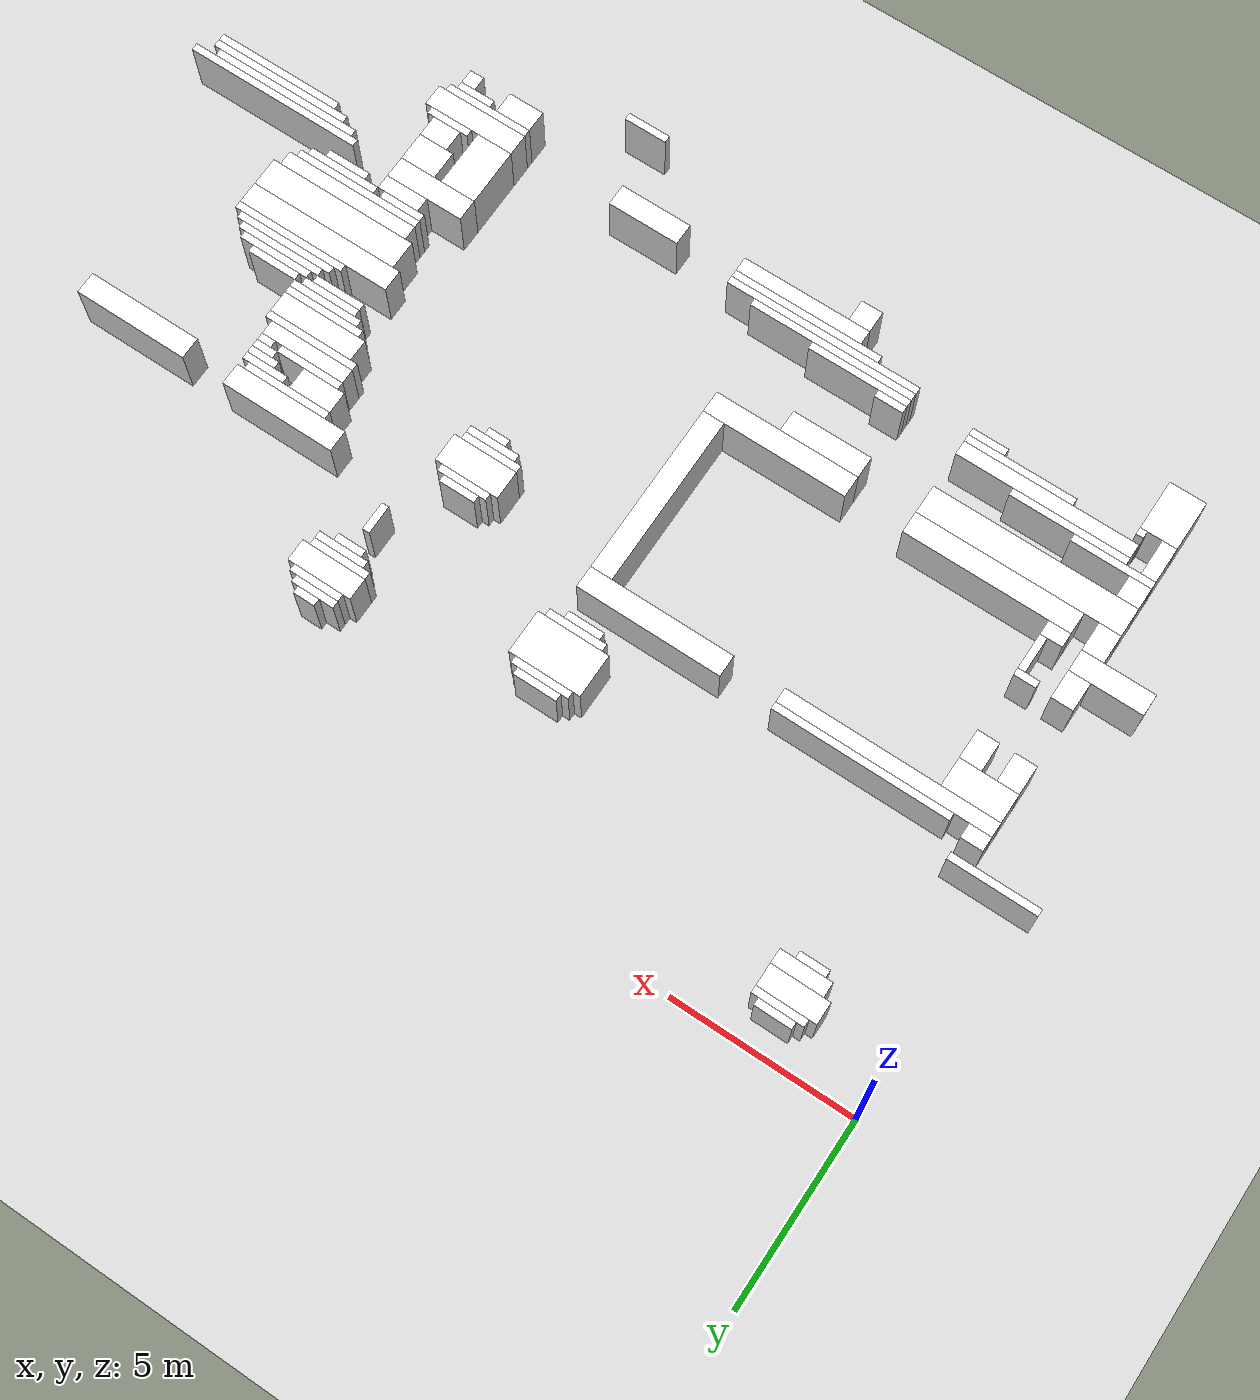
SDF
<sdf version="1.7">
 <world name="default">
  <model name="ground_plane">
   <static>1</static>
   <link name="link">
    <collision name="collision">
     <geometry><plane><normal>0 0 1</normal><size>120 120</size></plane></geometry>
    </collision>
    <visual name="visual">
     <geometry><plane><normal>0 0 1</normal><size>120 120</size></plane></geometry>
     <material>
      <script><uri>file://media/materials/scripts/gazebo.material</uri><name>Gazebo/Grey</name></script>
     </material>
    </visual>
   </link>
  </model>
  <model name="random_complex_01_model">
   <static>1</static>
   <link name="obs_1873">
    <pose>2.7000 -0.7000 0.8000 0 0 0</pose>
    <collision name="obs_1873_col"><geometry><box><size>1.0000 0.2000 1.6000</size></box></geometry></collision>
    <visual name="obs_1873_vis">
     <geometry><box><size>1.0000 0.2000 1.6000</size></box></geometry>
     <material>
      <script><uri>file://media/materials/scripts/gazebo.material</uri><name>Gazebo/White</name></script>
     </material>
    </visual>
   </link>
   <link name="obs_1878">
    <pose>2.7000 -0.9000 0.8000 0 0 0</pose>
    <collision name="obs_1878_col"><geometry><box><size>1.4000 0.2000 1.6000</size></box></geometry></collision>
    <visual name="obs_1878_vis">
     <geometry><box><size>1.4000 0.2000 1.6000</size></box></geometry>
     <material>
      <script><uri>file://media/materials/scripts/gazebo.material</uri><name>Gazebo/White</name></script>
     </material>
    </visual>
   </link>
   <link name="obs_1895">
    <pose>2.6000 -1.3000 0.8000 0 0 0</pose>
    <collision name="obs_1895_col"><geometry><box><size>1.6000 0.6000 1.6000</size></box></geometry></collision>
    <visual name="obs_1895_vis">
     <geometry><box><size>1.6000 0.6000 1.6000</size></box></geometry>
     <material>
      <script><uri>file://media/materials/scripts/gazebo.material</uri><name>Gazebo/White</name></script>
     </material>
    </visual>
   </link>
   <link name="obs_1907">
    <pose>2.7000 -1.8000 0.8000 0 0 0</pose>
    <collision name="obs_1907_col"><geometry><box><size>1.4000 0.4000 1.6000</size></box></geometry></collision>
    <visual name="obs_1907_vis">
     <geometry><box><size>1.4000 0.4000 1.6000</size></box></geometry>
     <material>
      <script><uri>file://media/materials/scripts/gazebo.material</uri><name>Gazebo/White</name></script>
     </material>
    </visual>
   </link>
   <link name="obs_1918">
    <pose>2.6000 -2.1000 0.8000 0 0 0</pose>
    <collision name="obs_1918_col"><geometry><box><size>0.8000 0.2000 1.6000</size></box></geometry></collision>
    <visual name="obs_1918_vis">
     <geometry><box><size>0.8000 0.2000 1.6000</size></box></geometry>
     <material>
      <script><uri>file://media/materials/scripts/gazebo.material</uri><name>Gazebo/White</name></script>
     </material>
    </visual>
   </link>
   <link name="obs_1951">
    <pose>17.1000 -2.9000 0.8000 0 0 0</pose>
    <collision name="obs_1951_col"><geometry><box><size>0.6000 0.2000 1.6000</size></box></geometry></collision>
    <visual name="obs_1951_vis">
     <geometry><box><size>0.6000 0.2000 1.6000</size></box></geometry>
     <material>
      <script><uri>file://media/materials/scripts/gazebo.material</uri><name>Gazebo/White</name></script>
     </material>
    </visual>
   </link>
   <link name="obs_1959">
    <pose>17.0000 -3.1000 0.8000 0 0 0</pose>
    <collision name="obs_1959_col"><geometry><box><size>1.2000 0.2000 1.6000</size></box></geometry></collision>
    <visual name="obs_1959_vis">
     <geometry><box><size>1.2000 0.2000 1.6000</size></box></geometry>
     <material>
      <script><uri>file://media/materials/scripts/gazebo.material</uri><name>Gazebo/White</name></script>
     </material>
    </visual>
   </link>
   <link name="obs_1964">
    <pose>17.1000 -3.3000 0.8000 0 0 0</pose>
    <collision name="obs_1964_col"><geometry><box><size>1.4000 0.2000 1.6000</size></box></geometry></collision>
    <visual name="obs_1964_vis">
     <geometry><box><size>1.4000 0.2000 1.6000</size></box></geometry>
     <material>
      <script><uri>file://media/materials/scripts/gazebo.material</uri><name>Gazebo/White</name></script>
     </material>
    </visual>
   </link>
   <link name="obs_1985">
    <pose>17.1000 -3.7000 0.8000 0 0 0</pose>
    <collision name="obs_1985_col"><geometry><box><size>1.8000 0.6000 1.6000</size></box></geometry></collision>
    <visual name="obs_1985_vis">
     <geometry><box><size>1.8000 0.6000 1.6000</size></box></geometry>
     <material>
      <script><uri>file://media/materials/scripts/gazebo.material</uri><name>Gazebo/White</name></script>
     </material>
    </visual>
   </link>
   <link name="obs_2000">
    <pose>11.4000 -4.1000 0.8000 0 0 0</pose>
    <collision name="obs_2000_col"><geometry><box><size>1.2000 0.2000 1.6000</size></box></geometry></collision>
    <visual name="obs_2000_vis">
     <geometry><box><size>1.2000 0.2000 1.6000</size></box></geometry>
     <material>
      <script><uri>file://media/materials/scripts/gazebo.material</uri><name>Gazebo/White</name></script>
     </material>
    </visual>
   </link>
   <link name="obs_2001">
    <pose>17.0000 -4.1000 0.8000 0 0 0</pose>
    <collision name="obs_2001_col"><geometry><box><size>1.6000 0.2000 1.6000</size></box></geometry></collision>
    <visual name="obs_2001_vis">
     <geometry><box><size>1.6000 0.2000 1.6000</size></box></geometry>
     <material>
      <script><uri>file://media/materials/scripts/gazebo.material</uri><name>Gazebo/White</name></script>
     </material>
    </visual>
   </link>
   <link name="obs_2011">
    <pose>11.4000 -4.3000 0.8000 0 0 0</pose>
    <collision name="obs_2011_col"><geometry><box><size>1.6000 0.2000 1.6000</size></box></geometry></collision>
    <visual name="obs_2011_vis">
     <geometry><box><size>1.6000 0.2000 1.6000</size></box></geometry>
     <material>
      <script><uri>file://media/materials/scripts/gazebo.material</uri><name>Gazebo/White</name></script>
     </material>
    </visual>
   </link>
   <link name="obs_2012">
    <pose>17.1000 -4.3000 0.8000 0 0 0</pose>
    <collision name="obs_2012_col"><geometry><box><size>1.4000 0.2000 1.6000</size></box></geometry></collision>
    <visual name="obs_2012_vis">
     <geometry><box><size>1.4000 0.2000 1.6000</size></box></geometry>
     <material>
      <script><uri>file://media/materials/scripts/gazebo.material</uri><name>Gazebo/White</name></script>
     </material>
    </visual>
   </link>
   <link name="obs_2023">
    <pose>17.0000 -4.5000 0.8000 0 0 0</pose>
    <collision name="obs_2023_col"><geometry><box><size>0.8000 0.2000 1.6000</size></box></geometry></collision>
    <visual name="obs_2023_vis">
     <geometry><box><size>0.8000 0.2000 1.6000</size></box></geometry>
     <material>
      <script><uri>file://media/materials/scripts/gazebo.material</uri><name>Gazebo/White</name></script>
     </material>
    </visual>
   </link>
   <link name="obs_2055">
    <pose>11.4000 -5.0000 0.8000 0 0 0</pose>
    <collision name="obs_2055_col"><geometry><box><size>2.0000 1.2000 1.6000</size></box></geometry></collision>
    <visual name="obs_2055_vis">
     <geometry><box><size>2.0000 1.2000 1.6000</size></box></geometry>
     <material>
      <script><uri>file://media/materials/scripts/gazebo.material</uri><name>Gazebo/White</name></script>
     </material>
    </visual>
   </link>
   <link name="obs_2062">
    <pose>16.9000 -5.4000 0.8000 0 0 0</pose>
    <collision name="obs_2062_col"><geometry><box><size>0.2000 0.8000 1.6000</size></box></geometry></collision>
    <visual name="obs_2062_vis">
     <geometry><box><size>0.2000 0.8000 1.6000</size></box></geometry>
     <material>
      <script><uri>file://media/materials/scripts/gazebo.material</uri><name>Gazebo/White</name></script>
     </material>
    </visual>
   </link>
   <link name="obs_2067">
    <pose>11.4000 -5.7000 0.8000 0 0 0</pose>
    <collision name="obs_2067_col"><geometry><box><size>1.6000 0.2000 1.6000</size></box></geometry></collision>
    <visual name="obs_2067_vis">
     <geometry><box><size>1.6000 0.2000 1.6000</size></box></geometry>
     <material>
      <script><uri>file://media/materials/scripts/gazebo.material</uri><name>Gazebo/White</name></script>
     </material>
    </visual>
   </link>
   <link name="obs_2076">
    <pose>0.2000 -5.9000 0.8000 0 0 0</pose>
    <collision name="obs_2076_col"><geometry><box><size>2.4000 0.2000 1.6000</size></box></geometry></collision>
    <visual name="obs_2076_vis">
     <geometry><box><size>2.4000 0.2000 1.6000</size></box></geometry>
     <material>
      <script><uri>file://media/materials/scripts/gazebo.material</uri><name>Gazebo/White</name></script>
     </material>
    </visual>
   </link>
   <link name="obs_2077">
    <pose>11.3000 -5.9000 0.8000 0 0 0</pose>
    <collision name="obs_2077_col"><geometry><box><size>1.0000 0.2000 1.6000</size></box></geometry></collision>
    <visual name="obs_2077_vis">
     <geometry><box><size>1.0000 0.2000 1.6000</size></box></geometry>
     <material>
      <script><uri>file://media/materials/scripts/gazebo.material</uri><name>Gazebo/White</name></script>
     </material>
    </visual>
   </link>
   <link name="obs_2098">
    <pose>20.4000 -6.5000 0.8000 0 0 0</pose>
    <collision name="obs_2098_col"><geometry><box><size>3.2000 0.6000 1.6000</size></box></geometry></collision>
    <visual name="obs_2098_vis">
     <geometry><box><size>3.2000 0.6000 1.6000</size></box></geometry>
     <material>
      <script><uri>file://media/materials/scripts/gazebo.material</uri><name>Gazebo/White</name></script>
     </material>
    </visual>
   </link>
   <link name="obs_2099">
    <pose>24.8000 -6.5000 0.8000 0 0 0</pose>
    <collision name="obs_2099_col"><geometry><box><size>3.2000 0.6000 1.6000</size></box></geometry></collision>
    <visual name="obs_2099_vis">
     <geometry><box><size>3.2000 0.6000 1.6000</size></box></geometry>
     <material>
      <script><uri>file://media/materials/scripts/gazebo.material</uri><name>Gazebo/White</name></script>
     </material>
    </visual>
   </link>
   <link name="obs_2100">
    <pose>1.1000 -6.6000 0.8000 0 0 0</pose>
    <collision name="obs_2100_col"><geometry><box><size>0.6000 0.4000 1.6000</size></box></geometry></collision>
    <visual name="obs_2100_vis">
     <geometry><box><size>0.6000 0.4000 1.6000</size></box></geometry>
     <material>
      <script><uri>file://media/materials/scripts/gazebo.material</uri><name>Gazebo/White</name></script>
     </material>
    </visual>
   </link>
   <link name="obs_2106">
    <pose>4.2000 -6.7000 0.8000 0 0 0</pose>
    <collision name="obs_2106_col"><geometry><box><size>4.8000 0.2000 1.6000</size></box></geometry></collision>
    <visual name="obs_2106_vis">
     <geometry><box><size>4.8000 0.2000 1.6000</size></box></geometry>
     <material>
      <script><uri>file://media/materials/scripts/gazebo.material</uri><name>Gazebo/White</name></script>
     </material>
    </visual>
   </link>
   <link name="obs_2114">
    <pose>20.6000 -6.9000 0.8000 0 0 0</pose>
    <collision name="obs_2114_col"><geometry><box><size>2.4000 0.2000 1.6000</size></box></geometry></collision>
    <visual name="obs_2114_vis">
     <geometry><box><size>2.4000 0.2000 1.6000</size></box></geometry>
     <material>
      <script><uri>file://media/materials/scripts/gazebo.material</uri><name>Gazebo/White</name></script>
     </material>
    </visual>
   </link>
   <link name="obs_2117">
    <pose>10.0000 -6.9000 0.8000 0 0 0</pose>
    <collision name="obs_2117_col"><geometry><box><size>4.0000 0.6000 1.6000</size></box></geometry></collision>
    <visual name="obs_2117_vis">
     <geometry><box><size>4.0000 0.6000 1.6000</size></box></geometry>
     <material>
      <script><uri>file://media/materials/scripts/gazebo.material</uri><name>Gazebo/White</name></script>
     </material>
    </visual>
   </link>
   <link name="obs_2118">
    <pose>3.7000 -7.0000 0.8000 0 0 0</pose>
    <collision name="obs_2118_col"><geometry><box><size>5.8000 0.4000 1.6000</size></box></geometry></collision>
    <visual name="obs_2118_vis">
     <geometry><box><size>5.8000 0.4000 1.6000</size></box></geometry>
     <material>
      <script><uri>file://media/materials/scripts/gazebo.material</uri><name>Gazebo/White</name></script>
     </material>
    </visual>
   </link>
   <link name="obs_2123">
    <pose>15.7000 -7.1000 0.8000 0 0 0</pose>
    <collision name="obs_2123_col"><geometry><box><size>1.0000 0.2000 1.6000</size></box></geometry></collision>
    <visual name="obs_2123_vis">
     <geometry><box><size>1.0000 0.2000 1.6000</size></box></geometry>
     <material>
      <script><uri>file://media/materials/scripts/gazebo.material</uri><name>Gazebo/White</name></script>
     </material>
    </visual>
   </link>
   <link name="obs_2124">
    <pose>21.4000 -7.1000 0.8000 0 0 0</pose>
    <collision name="obs_2124_col"><geometry><box><size>1.2000 0.2000 1.6000</size></box></geometry></collision>
    <visual name="obs_2124_vis">
     <geometry><box><size>1.2000 0.2000 1.6000</size></box></geometry>
     <material>
      <script><uri>file://media/materials/scripts/gazebo.material</uri><name>Gazebo/White</name></script>
     </material>
    </visual>
   </link>
   <link name="obs_2132">
    <pose>15.7000 -7.3000 0.8000 0 0 0</pose>
    <collision name="obs_2132_col"><geometry><box><size>1.4000 0.2000 1.6000</size></box></geometry></collision>
    <visual name="obs_2132_vis">
     <geometry><box><size>1.4000 0.2000 1.6000</size></box></geometry>
     <material>
      <script><uri>file://media/materials/scripts/gazebo.material</uri><name>Gazebo/White</name></script>
     </material>
    </visual>
   </link>
   <link name="obs_2133">
    <pose>21.6000 -7.3000 0.8000 0 0 0</pose>
    <collision name="obs_2133_col"><geometry><box><size>0.8000 0.2000 1.6000</size></box></geometry></collision>
    <visual name="obs_2133_vis">
     <geometry><box><size>0.8000 0.2000 1.6000</size></box></geometry>
     <material>
      <script><uri>file://media/materials/scripts/gazebo.material</uri><name>Gazebo/White</name></script>
     </material>
    </visual>
   </link>
   <link name="obs_2137">
    <pose>20.0000 -7.3000 0.8000 0 0 0</pose>
    <collision name="obs_2137_col"><geometry><box><size>1.2000 0.6000 1.6000</size></box></geometry></collision>
    <visual name="obs_2137_vis">
     <geometry><box><size>1.2000 0.6000 1.6000</size></box></geometry>
     <material>
      <script><uri>file://media/materials/scripts/gazebo.material</uri><name>Gazebo/White</name></script>
     </material>
    </visual>
   </link>
   <link name="obs_2140">
    <pose>21.7000 -7.5000 0.8000 0 0 0</pose>
    <collision name="obs_2140_col"><geometry><box><size>0.6000 0.2000 1.6000</size></box></geometry></collision>
    <visual name="obs_2140_vis">
     <geometry><box><size>0.6000 0.2000 1.6000</size></box></geometry>
     <material>
      <script><uri>file://media/materials/scripts/gazebo.material</uri><name>Gazebo/White</name></script>
     </material>
    </visual>
   </link>
   <link name="obs_2148">
    <pose>20.5000 -7.7000 0.8000 0 0 0</pose>
    <collision name="obs_2148_col"><geometry><box><size>1.8000 0.2000 1.6000</size></box></geometry></collision>
    <visual name="obs_2148_vis">
     <geometry><box><size>1.8000 0.2000 1.6000</size></box></geometry>
     <material>
      <script><uri>file://media/materials/scripts/gazebo.material</uri><name>Gazebo/White</name></script>
     </material>
    </visual>
   </link>
   <link name="obs_2149">
    <pose>21.8000 -7.7000 0.8000 0 0 0</pose>
    <collision name="obs_2149_col"><geometry><box><size>0.4000 0.2000 1.6000</size></box></geometry></collision>
    <visual name="obs_2149_vis">
     <geometry><box><size>0.4000 0.2000 1.6000</size></box></geometry>
     <material>
      <script><uri>file://media/materials/scripts/gazebo.material</uri><name>Gazebo/White</name></script>
     </material>
    </visual>
   </link>
   <link name="obs_2151">
    <pose>1.6000 -7.6000 0.8000 0 0 0</pose>
    <collision name="obs_2151_col"><geometry><box><size>1.6000 0.8000 1.6000</size></box></geometry></collision>
    <visual name="obs_2151_vis">
     <geometry><box><size>1.6000 0.8000 1.6000</size></box></geometry>
     <material>
      <script><uri>file://media/materials/scripts/gazebo.material</uri><name>Gazebo/White</name></script>
     </material>
    </visual>
   </link>
   <link name="obs_2157">
    <pose>15.7000 -7.8000 0.8000 0 0 0</pose>
    <collision name="obs_2157_col"><geometry><box><size>1.8000 0.8000 1.6000</size></box></geometry></collision>
    <visual name="obs_2157_vis">
     <geometry><box><size>1.8000 0.8000 1.6000</size></box></geometry>
     <material>
      <script><uri>file://media/materials/scripts/gazebo.material</uri><name>Gazebo/White</name></script>
     </material>
    </visual>
   </link>
   <link name="obs_2158">
    <pose>20.8000 -8.0000 0.8000 0 0 0</pose>
    <collision name="obs_2158_col"><geometry><box><size>2.4000 0.4000 1.6000</size></box></geometry></collision>
    <visual name="obs_2158_vis">
     <geometry><box><size>2.4000 0.4000 1.6000</size></box></geometry>
     <material>
      <script><uri>file://media/materials/scripts/gazebo.material</uri><name>Gazebo/White</name></script>
     </material>
    </visual>
   </link>
   <link name="obs_2165">
    <pose>15.6000 -8.3000 0.8000 0 0 0</pose>
    <collision name="obs_2165_col"><geometry><box><size>1.6000 0.2000 1.6000</size></box></geometry></collision>
    <visual name="obs_2165_vis">
     <geometry><box><size>1.6000 0.2000 1.6000</size></box></geometry>
     <material>
      <script><uri>file://media/materials/scripts/gazebo.material</uri><name>Gazebo/White</name></script>
     </material>
    </visual>
   </link>
   <link name="obs_2166">
    <pose>20.9000 -8.3000 0.8000 0 0 0</pose>
    <collision name="obs_2166_col"><geometry><box><size>2.6000 0.2000 1.6000</size></box></geometry></collision>
    <visual name="obs_2166_vis">
     <geometry><box><size>2.6000 0.2000 1.6000</size></box></geometry>
     <material>
      <script><uri>file://media/materials/scripts/gazebo.material</uri><name>Gazebo/White</name></script>
     </material>
    </visual>
   </link>
   <link name="obs_2173">
    <pose>15.7000 -8.5000 0.8000 0 0 0</pose>
    <collision name="obs_2173_col"><geometry><box><size>1.4000 0.2000 1.6000</size></box></geometry></collision>
    <visual name="obs_2173_vis">
     <geometry><box><size>1.4000 0.2000 1.6000</size></box></geometry>
     <material>
      <script><uri>file://media/materials/scripts/gazebo.material</uri><name>Gazebo/White</name></script>
     </material>
    </visual>
   </link>
   <link name="obs_2175">
    <pose>1.1000 -8.4000 0.8000 0 0 0</pose>
    <collision name="obs_2175_col"><geometry><box><size>0.6000 0.8000 1.6000</size></box></geometry></collision>
    <visual name="obs_2175_vis">
     <geometry><box><size>0.6000 0.8000 1.6000</size></box></geometry>
     <material>
      <script><uri>file://media/materials/scripts/gazebo.material</uri><name>Gazebo/White</name></script>
     </material>
    </visual>
   </link>
   <link name="obs_2176">
    <pose>2.1000 -8.4000 0.8000 0 0 0</pose>
    <collision name="obs_2176_col"><geometry><box><size>0.6000 0.8000 1.6000</size></box></geometry></collision>
    <visual name="obs_2176_vis">
     <geometry><box><size>0.6000 0.8000 1.6000</size></box></geometry>
     <material>
      <script><uri>file://media/materials/scripts/gazebo.material</uri><name>Gazebo/White</name></script>
     </material>
    </visual>
   </link>
   <link name="obs_2181">
    <pose>15.7000 -8.7000 0.8000 0 0 0</pose>
    <collision name="obs_2181_col"><geometry><box><size>0.6000 0.2000 1.6000</size></box></geometry></collision>
    <visual name="obs_2181_vis">
     <geometry><box><size>0.6000 0.2000 1.6000</size></box></geometry>
     <material>
      <script><uri>file://media/materials/scripts/gazebo.material</uri><name>Gazebo/White</name></script>
     </material>
    </visual>
   </link>
   <link name="obs_2186">
    <pose>21.0000 -8.7000 0.8000 0 0 0</pose>
    <collision name="obs_2186_col"><geometry><box><size>2.4000 0.6000 1.6000</size></box></geometry></collision>
    <visual name="obs_2186_vis">
     <geometry><box><size>2.4000 0.6000 1.6000</size></box></geometry>
     <material>
      <script><uri>file://media/materials/scripts/gazebo.material</uri><name>Gazebo/White</name></script>
     </material>
    </visual>
   </link>
   <link name="obs_2192">
    <pose>21.1000 -9.1000 0.8000 0 0 0</pose>
    <collision name="obs_2192_col"><geometry><box><size>2.2000 0.2000 1.6000</size></box></geometry></collision>
    <visual name="obs_2192_vis">
     <geometry><box><size>2.2000 0.2000 1.6000</size></box></geometry>
     <material>
      <script><uri>file://media/materials/scripts/gazebo.material</uri><name>Gazebo/White</name></script>
     </material>
    </visual>
   </link>
   <link name="obs_2198">
    <pose>21.2000 -9.3000 0.8000 0 0 0</pose>
    <collision name="obs_2198_col"><geometry><box><size>2.0000 0.2000 1.6000</size></box></geometry></collision>
    <visual name="obs_2198_vis">
     <geometry><box><size>2.0000 0.2000 1.6000</size></box></geometry>
     <material>
      <script><uri>file://media/materials/scripts/gazebo.material</uri><name>Gazebo/White</name></script>
     </material>
    </visual>
   </link>
   <link name="obs_2204">
    <pose>21.2000 -9.5000 0.8000 0 0 0</pose>
    <collision name="obs_2204_col"><geometry><box><size>1.6000 0.2000 1.6000</size></box></geometry></collision>
    <visual name="obs_2204_vis">
     <geometry><box><size>1.6000 0.2000 1.6000</size></box></geometry>
     <material>
      <script><uri>file://media/materials/scripts/gazebo.material</uri><name>Gazebo/White</name></script>
     </material>
    </visual>
   </link>
   <link name="obs_2205">
    <pose>22.9000 -9.5000 0.8000 0 0 0</pose>
    <collision name="obs_2205_col"><geometry><box><size>1.4000 0.2000 1.6000</size></box></geometry></collision>
    <visual name="obs_2205_vis">
     <geometry><box><size>1.4000 0.2000 1.6000</size></box></geometry>
     <material>
      <script><uri>file://media/materials/scripts/gazebo.material</uri><name>Gazebo/White</name></script>
     </material>
    </visual>
   </link>
   <link name="obs_2210">
    <pose>21.1000 -9.7000 0.8000 0 0 0</pose>
    <collision name="obs_2210_col"><geometry><box><size>1.4000 0.2000 1.6000</size></box></geometry></collision>
    <visual name="obs_2210_vis">
     <geometry><box><size>1.4000 0.2000 1.6000</size></box></geometry>
     <material>
      <script><uri>file://media/materials/scripts/gazebo.material</uri><name>Gazebo/White</name></script>
     </material>
    </visual>
   </link>
   <link name="obs_2211">
    <pose>23.0000 -9.7000 0.8000 0 0 0</pose>
    <collision name="obs_2211_col"><geometry><box><size>2.0000 0.2000 1.6000</size></box></geometry></collision>
    <visual name="obs_2211_vis">
     <geometry><box><size>2.0000 0.2000 1.6000</size></box></geometry>
     <material>
      <script><uri>file://media/materials/scripts/gazebo.material</uri><name>Gazebo/White</name></script>
     </material>
    </visual>
   </link>
   <link name="obs_2217">
    <pose>23.0000 -9.9000 0.8000 0 0 0</pose>
    <collision name="obs_2217_col"><geometry><box><size>2.4000 0.2000 1.6000</size></box></geometry></collision>
    <visual name="obs_2217_vis">
     <geometry><box><size>2.4000 0.2000 1.6000</size></box></geometry>
     <material>
      <script><uri>file://media/materials/scripts/gazebo.material</uri><name>Gazebo/White</name></script>
     </material>
    </visual>
   </link>
   <link name="obs_2223">
    <pose>23.0000 -10.1000 0.8000 0 0 0</pose>
    <collision name="obs_2223_col"><geometry><box><size>2.8000 0.2000 1.6000</size></box></geometry></collision>
    <visual name="obs_2223_vis">
     <geometry><box><size>2.8000 0.2000 1.6000</size></box></geometry>
     <material>
      <script><uri>file://media/materials/scripts/gazebo.material</uri><name>Gazebo/White</name></script>
     </material>
    </visual>
   </link>
   <link name="obs_2228">
    <pose>23.0000 -10.3000 0.8000 0 0 0</pose>
    <collision name="obs_2228_col"><geometry><box><size>3.2000 0.2000 1.6000</size></box></geometry></collision>
    <visual name="obs_2228_vis">
     <geometry><box><size>3.2000 0.2000 1.6000</size></box></geometry>
     <material>
      <script><uri>file://media/materials/scripts/gazebo.material</uri><name>Gazebo/White</name></script>
     </material>
    </visual>
   </link>
   <link name="obs_2235">
    <pose>2.1000 -10.5000 0.8000 0 0 0</pose>
    <collision name="obs_2235_col"><geometry><box><size>0.6000 0.2000 1.6000</size></box></geometry></collision>
    <visual name="obs_2235_vis">
     <geometry><box><size>0.6000 0.2000 1.6000</size></box></geometry>
     <material>
      <script><uri>file://media/materials/scripts/gazebo.material</uri><name>Gazebo/White</name></script>
     </material>
    </visual>
   </link>
   <link name="obs_2246">
    <pose>22.4000 -10.7000 0.8000 0 0 0</pose>
    <collision name="obs_2246_col"><geometry><box><size>4.4000 0.6000 1.6000</size></box></geometry></collision>
    <visual name="obs_2246_vis">
     <geometry><box><size>4.4000 0.6000 1.6000</size></box></geometry>
     <material>
      <script><uri>file://media/materials/scripts/gazebo.material</uri><name>Gazebo/White</name></script>
     </material>
    </visual>
   </link>
   <link name="obs_2255">
    <pose>1.1000 -10.8000 0.8000 0 0 0</pose>
    <collision name="obs_2255_col"><geometry><box><size>0.6000 0.8000 1.6000</size></box></geometry></collision>
    <visual name="obs_2255_vis">
     <geometry><box><size>0.6000 0.8000 1.6000</size></box></geometry>
     <material>
      <script><uri>file://media/materials/scripts/gazebo.material</uri><name>Gazebo/White</name></script>
     </material>
    </visual>
   </link>
   <link name="obs_2266">
    <pose>2.3000 -11.1000 0.8000 0 0 0</pose>
    <collision name="obs_2266_col"><geometry><box><size>0.2000 1.0000 1.6000</size></box></geometry></collision>
    <visual name="obs_2266_vis">
     <geometry><box><size>0.2000 1.0000 1.6000</size></box></geometry>
     <material>
      <script><uri>file://media/materials/scripts/gazebo.material</uri><name>Gazebo/White</name></script>
     </material>
    </visual>
   </link>
   <link name="obs_2271">
    <pose>22.5000 -11.4000 0.8000 0 0 0</pose>
    <collision name="obs_2271_col"><geometry><box><size>4.2000 0.8000 1.6000</size></box></geometry></collision>
    <visual name="obs_2271_vis">
     <geometry><box><size>4.2000 0.8000 1.6000</size></box></geometry>
     <material>
      <script><uri>file://media/materials/scripts/gazebo.material</uri><name>Gazebo/White</name></script>
     </material>
    </visual>
   </link>
   <link name="obs_2275">
    <pose>0.4000 -11.5000 0.8000 0 0 0</pose>
    <collision name="obs_2275_col"><geometry><box><size>2.0000 0.6000 1.6000</size></box></geometry></collision>
    <visual name="obs_2275_vis">
     <geometry><box><size>2.0000 0.6000 1.6000</size></box></geometry>
     <material>
      <script><uri>file://media/materials/scripts/gazebo.material</uri><name>Gazebo/White</name></script>
     </material>
    </visual>
   </link>
   <link name="obs_2279">
    <pose>11.7000 -9.6000 0.8000 0 0 0</pose>
    <collision name="obs_2279_col"><geometry><box><size>0.6000 4.8000 1.6000</size></box></geometry></collision>
    <visual name="obs_2279_vis">
     <geometry><box><size>0.6000 4.8000 1.6000</size></box></geometry>
     <material>
      <script><uri>file://media/materials/scripts/gazebo.material</uri><name>Gazebo/White</name></script>
     </material>
    </visual>
   </link>
   <link name="obs_2281">
    <pose>2.1000 -11.8000 0.8000 0 0 0</pose>
    <collision name="obs_2281_col"><geometry><box><size>0.6000 0.4000 1.6000</size></box></geometry></collision>
    <visual name="obs_2281_vis">
     <geometry><box><size>0.6000 0.4000 1.6000</size></box></geometry>
     <material>
      <script><uri>file://media/materials/scripts/gazebo.material</uri><name>Gazebo/White</name></script>
     </material>
    </visual>
   </link>
   <link name="obs_2286">
    <pose>22.5000 -12.0000 0.8000 0 0 0</pose>
    <collision name="obs_2286_col"><geometry><box><size>3.8000 0.4000 1.6000</size></box></geometry></collision>
    <visual name="obs_2286_vis">
     <geometry><box><size>3.8000 0.4000 1.6000</size></box></geometry>
     <material>
      <script><uri>file://media/materials/scripts/gazebo.material</uri><name>Gazebo/White</name></script>
     </material>
    </visual>
   </link>
   <link name="obs_2292">
    <pose>22.4000 -12.3000 0.8000 0 0 0</pose>
    <collision name="obs_2292_col"><geometry><box><size>3.6000 0.2000 1.6000</size></box></geometry></collision>
    <visual name="obs_2292_vis">
     <geometry><box><size>3.6000 0.2000 1.6000</size></box></geometry>
     <material>
      <script><uri>file://media/materials/scripts/gazebo.material</uri><name>Gazebo/White</name></script>
     </material>
    </visual>
   </link>
   <link name="obs_2296">
    <pose>1.1000 -12.2000 0.8000 0 0 0</pose>
    <collision name="obs_2296_col"><geometry><box><size>0.6000 0.8000 1.6000</size></box></geometry></collision>
    <visual name="obs_2296_vis">
     <geometry><box><size>0.6000 0.8000 1.6000</size></box></geometry>
     <material>
      <script><uri>file://media/materials/scripts/gazebo.material</uri><name>Gazebo/White</name></script>
     </material>
    </visual>
   </link>
   <link name="obs_2298">
    <pose>4.1000 -12.3000 0.8000 0 0 0</pose>
    <collision name="obs_2298_col"><geometry><box><size>4.6000 0.6000 1.6000</size></box></geometry></collision>
    <visual name="obs_2298_vis">
     <geometry><box><size>4.6000 0.6000 1.6000</size></box></geometry>
     <material>
      <script><uri>file://media/materials/scripts/gazebo.material</uri><name>Gazebo/White</name></script>
     </material>
    </visual>
   </link>
   <link name="obs_2299">
    <pose>10.0000 -12.3000 0.8000 0 0 0</pose>
    <collision name="obs_2299_col"><geometry><box><size>4.0000 0.6000 1.6000</size></box></geometry></collision>
    <visual name="obs_2299_vis">
     <geometry><box><size>4.0000 0.6000 1.6000</size></box></geometry>
     <material>
      <script><uri>file://media/materials/scripts/gazebo.material</uri><name>Gazebo/White</name></script>
     </material>
    </visual>
   </link>
   <link name="obs_2302">
    <pose>21.2000 -12.5000 0.8000 0 0 0</pose>
    <collision name="obs_2302_col"><geometry><box><size>1.2000 0.2000 1.6000</size></box></geometry></collision>
    <visual name="obs_2302_vis">
     <geometry><box><size>1.2000 0.2000 1.6000</size></box></geometry>
     <material>
      <script><uri>file://media/materials/scripts/gazebo.material</uri><name>Gazebo/White</name></script>
     </material>
    </visual>
   </link>
   <link name="obs_2303">
    <pose>23.0000 -12.5000 0.8000 0 0 0</pose>
    <collision name="obs_2303_col"><geometry><box><size>2.0000 0.2000 1.6000</size></box></geometry></collision>
    <visual name="obs_2303_vis">
     <geometry><box><size>2.0000 0.2000 1.6000</size></box></geometry>
     <material>
      <script><uri>file://media/materials/scripts/gazebo.material</uri><name>Gazebo/White</name></script>
     </material>
    </visual>
   </link>
   <link name="obs_2310">
    <pose>23.0000 -12.7000 0.8000 0 0 0</pose>
    <collision name="obs_2310_col"><geometry><box><size>1.2000 0.2000 1.6000</size></box></geometry></collision>
    <visual name="obs_2310_vis">
     <geometry><box><size>1.2000 0.2000 1.6000</size></box></geometry>
     <material>
      <script><uri>file://media/materials/scripts/gazebo.material</uri><name>Gazebo/White</name></script>
     </material>
    </visual>
   </link>
   <link name="obs_2314">
    <pose>21.4000 -12.8000 0.8000 0 0 0</pose>
    <collision name="obs_2314_col"><geometry><box><size>1.2000 0.4000 1.6000</size></box></geometry></collision>
    <visual name="obs_2314_vis">
     <geometry><box><size>1.2000 0.4000 1.6000</size></box></geometry>
     <material>
      <script><uri>file://media/materials/scripts/gazebo.material</uri><name>Gazebo/White</name></script>
     </material>
    </visual>
   </link>
   <link name="obs_2317">
    <pose>9.1000 -12.9000 0.8000 0 0 0</pose>
    <collision name="obs_2317_col"><geometry><box><size>2.2000 0.6000 1.6000</size></box></geometry></collision>
    <visual name="obs_2317_vis">
     <geometry><box><size>2.2000 0.6000 1.6000</size></box></geometry>
     <material>
      <script><uri>file://media/materials/scripts/gazebo.material</uri><name>Gazebo/White</name></script>
     </material>
    </visual>
   </link>
   <link name="obs_2325">
    <pose>3.6000 -13.0000 0.8000 0 0 0</pose>
    <collision name="obs_2325_col"><geometry><box><size>5.6000 0.8000 1.6000</size></box></geometry></collision>
    <visual name="obs_2325_vis">
     <geometry><box><size>5.6000 0.8000 1.6000</size></box></geometry>
     <material>
      <script><uri>file://media/materials/scripts/gazebo.material</uri><name>Gazebo/White</name></script>
     </material>
    </visual>
   </link>
   <link name="obs_2326">
    <pose>25.7000 -13.3000 0.8000 0 0 0</pose>
    <collision name="obs_2326_col"><geometry><box><size>5.0000 0.2000 1.6000</size></box></geometry></collision>
    <visual name="obs_2326_vis">
     <geometry><box><size>5.0000 0.2000 1.6000</size></box></geometry>
     <material>
      <script><uri>file://media/materials/scripts/gazebo.material</uri><name>Gazebo/White</name></script>
     </material>
    </visual>
   </link>
   <link name="obs_2332">
    <pose>20.9000 -13.3000 0.8000 0 0 0</pose>
    <collision name="obs_2332_col"><geometry><box><size>2.2000 0.6000 1.6000</size></box></geometry></collision>
    <visual name="obs_2332_vis">
     <geometry><box><size>2.2000 0.6000 1.6000</size></box></geometry>
     <material>
      <script><uri>file://media/materials/scripts/gazebo.material</uri><name>Gazebo/White</name></script>
     </material>
    </visual>
   </link>
   <link name="obs_2334">
    <pose>25.5000 -13.5000 0.8000 0 0 0</pose>
    <collision name="obs_2334_col"><geometry><box><size>4.2000 0.2000 1.6000</size></box></geometry></collision>
    <visual name="obs_2334_vis">
     <geometry><box><size>4.2000 0.2000 1.6000</size></box></geometry>
     <material>
      <script><uri>file://media/materials/scripts/gazebo.material</uri><name>Gazebo/White</name></script>
     </material>
    </visual>
   </link>
   <link name="obs_2342">
    <pose>25.8000 -13.7000 0.8000 0 0 0</pose>
    <collision name="obs_2342_col"><geometry><box><size>4.0000 0.2000 1.6000</size></box></geometry></collision>
    <visual name="obs_2342_vis">
     <geometry><box><size>4.0000 0.2000 1.6000</size></box></geometry>
     <material>
      <script><uri>file://media/materials/scripts/gazebo.material</uri><name>Gazebo/White</name></script>
     </material>
    </visual>
   </link>
   <link name="obs_2346">
    <pose>1.1000 -13.7000 0.8000 0 0 0</pose>
    <collision name="obs_2346_col"><geometry><box><size>0.6000 0.6000 1.6000</size></box></geometry></collision>
    <visual name="obs_2346_vis">
     <geometry><box><size>0.6000 0.6000 1.6000</size></box></geometry>
     <material>
      <script><uri>file://media/materials/scripts/gazebo.material</uri><name>Gazebo/White</name></script>
     </material>
    </visual>
   </link>
   <link name="obs_2349">
    <pose>26.0000 -13.9000 0.8000 0 0 0</pose>
    <collision name="obs_2349_col"><geometry><box><size>3.6000 0.2000 1.6000</size></box></geometry></collision>
    <visual name="obs_2349_vis">
     <geometry><box><size>3.6000 0.2000 1.6000</size></box></geometry>
     <material>
      <script><uri>file://media/materials/scripts/gazebo.material</uri><name>Gazebo/White</name></script>
     </material>
    </visual>
   </link>
   <link name="obs_2354">
    <pose>1.9000 -14.1000 0.8000 0 0 0</pose>
    <collision name="obs_2354_col"><geometry><box><size>2.2000 0.2000 1.6000</size></box></geometry></collision>
    <visual name="obs_2354_vis">
     <geometry><box><size>2.2000 0.2000 1.6000</size></box></geometry>
     <material>
      <script><uri>file://media/materials/scripts/gazebo.material</uri><name>Gazebo/White</name></script>
     </material>
    </visual>
   </link>
   <link name="obs_2359">
    <pose>21.5000 -14.0000 0.8000 0 0 0</pose>
    <collision name="obs_2359_col"><geometry><box><size>1.0000 0.8000 1.6000</size></box></geometry></collision>
    <visual name="obs_2359_vis">
     <geometry><box><size>1.0000 0.8000 1.6000</size></box></geometry>
     <material>
      <script><uri>file://media/materials/scripts/gazebo.material</uri><name>Gazebo/White</name></script>
     </material>
    </visual>
   </link>
   <link name="obs_2361">
    <pose>3.2000 -14.3000 0.8000 0 0 0</pose>
    <collision name="obs_2361_col"><geometry><box><size>3.2000 0.2000 1.6000</size></box></geometry></collision>
    <visual name="obs_2361_vis">
     <geometry><box><size>3.2000 0.2000 1.6000</size></box></geometry>
     <material>
      <script><uri>file://media/materials/scripts/gazebo.material</uri><name>Gazebo/White</name></script>
     </material>
    </visual>
   </link>
   <link name="obs_2375">
    <pose>4.0000 -14.6000 0.8000 0 0 0</pose>
    <collision name="obs_2375_col"><geometry><box><size>4.8000 0.4000 1.6000</size></box></geometry></collision>
    <visual name="obs_2375_vis">
     <geometry><box><size>4.8000 0.4000 1.6000</size></box></geometry>
     <material>
      <script><uri>file://media/materials/scripts/gazebo.material</uri><name>Gazebo/White</name></script>
     </material>
    </visual>
   </link>
   <link name="obs_2377">
    <pose>8.4000 -14.7000 0.8000 0 0 0</pose>
    <collision name="obs_2377_col"><geometry><box><size>0.8000 0.2000 1.6000</size></box></geometry></collision>
    <visual name="obs_2377_vis">
     <geometry><box><size>0.8000 0.2000 1.6000</size></box></geometry>
     <material>
      <script><uri>file://media/materials/scripts/gazebo.material</uri><name>Gazebo/White</name></script>
     </material>
    </visual>
   </link>
   <link name="obs_2385">
    <pose>21.6000 -14.7000 0.8000 0 0 0</pose>
    <collision name="obs_2385_col"><geometry><box><size>0.8000 0.6000 1.6000</size></box></geometry></collision>
    <visual name="obs_2385_vis">
     <geometry><box><size>0.8000 0.6000 1.6000</size></box></geometry>
     <material>
      <script><uri>file://media/materials/scripts/gazebo.material</uri><name>Gazebo/White</name></script>
     </material>
    </visual>
   </link>
   <link name="obs_2387">
    <pose>4.9000 -14.9000 0.8000 0 0 0</pose>
    <collision name="obs_2387_col"><geometry><box><size>3.0000 0.2000 1.6000</size></box></geometry></collision>
    <visual name="obs_2387_vis">
     <geometry><box><size>3.0000 0.2000 1.6000</size></box></geometry>
     <material>
      <script><uri>file://media/materials/scripts/gazebo.material</uri><name>Gazebo/White</name></script>
     </material>
    </visual>
   </link>
   <link name="obs_2388">
    <pose>9.4000 -14.9000 0.8000 0 0 0</pose>
    <collision name="obs_2388_col"><geometry><box><size>2.8000 0.2000 1.6000</size></box></geometry></collision>
    <visual name="obs_2388_vis">
     <geometry><box><size>2.8000 0.2000 1.6000</size></box></geometry>
     <material>
      <script><uri>file://media/materials/scripts/gazebo.material</uri><name>Gazebo/White</name></script>
     </material>
    </visual>
   </link>
   <link name="obs_2393">
    <pose>20.3000 -14.4000 0.8000 0 0 0</pose>
    <collision name="obs_2393_col"><geometry><box><size>1.0000 1.6000 1.6000</size></box></geometry></collision>
    <visual name="obs_2393_vis">
     <geometry><box><size>1.0000 1.6000 1.6000</size></box></geometry>
     <material>
      <script><uri>file://media/materials/scripts/gazebo.material</uri><name>Gazebo/White</name></script>
     </material>
    </visual>
   </link>
   <link name="obs_2394">
    <pose>1.0000 -14.7000 0.8000 0 0 0</pose>
    <collision name="obs_2394_col"><geometry><box><size>0.4000 1.0000 1.6000</size></box></geometry></collision>
    <visual name="obs_2394_vis">
     <geometry><box><size>0.4000 1.0000 1.6000</size></box></geometry>
     <material>
      <script><uri>file://media/materials/scripts/gazebo.material</uri><name>Gazebo/White</name></script>
     </material>
    </visual>
   </link>
   <link name="obs_2399">
    <pose>1.7000 -15.1000 0.8000 0 0 0</pose>
    <collision name="obs_2399_col"><geometry><box><size>0.2000 0.2000 1.6000</size></box></geometry></collision>
    <visual name="obs_2399_vis">
     <geometry><box><size>0.2000 0.2000 1.6000</size></box></geometry>
     <material>
      <script><uri>file://media/materials/scripts/gazebo.material</uri><name>Gazebo/White</name></script>
     </material>
    </visual>
   </link>
   <link name="obs_2400">
    <pose>5.9000 -15.1000 0.8000 0 0 0</pose>
    <collision name="obs_2400_col"><geometry><box><size>1.0000 0.2000 1.6000</size></box></geometry></collision>
    <visual name="obs_2400_vis">
     <geometry><box><size>1.0000 0.2000 1.6000</size></box></geometry>
     <material>
      <script><uri>file://media/materials/scripts/gazebo.material</uri><name>Gazebo/White</name></script>
     </material>
    </visual>
   </link>
   <link name="obs_2401">
    <pose>10.3000 -15.1000 0.8000 0 0 0</pose>
    <collision name="obs_2401_col"><geometry><box><size>4.6000 0.2000 1.6000</size></box></geometry></collision>
    <visual name="obs_2401_vis">
     <geometry><box><size>4.6000 0.2000 1.6000</size></box></geometry>
     <material>
      <script><uri>file://media/materials/scripts/gazebo.material</uri><name>Gazebo/White</name></script>
     </material>
    </visual>
   </link>
   <link name="obs_2402">
    <pose>21.6000 -15.1000 0.8000 0 0 0</pose>
    <collision name="obs_2402_col"><geometry><box><size>1.2000 0.2000 1.6000</size></box></geometry></collision>
    <visual name="obs_2402_vis">
     <geometry><box><size>1.2000 0.2000 1.6000</size></box></geometry>
     <material>
      <script><uri>file://media/materials/scripts/gazebo.material</uri><name>Gazebo/White</name></script>
     </material>
    </visual>
   </link>
   <link name="obs_2414">
    <pose>10.7000 -15.3000 0.8000 0 0 0</pose>
    <collision name="obs_2414_col"><geometry><box><size>5.4000 0.2000 1.6000</size></box></geometry></collision>
    <visual name="obs_2414_vis">
     <geometry><box><size>5.4000 0.2000 1.6000</size></box></geometry>
     <material>
      <script><uri>file://media/materials/scripts/gazebo.material</uri><name>Gazebo/White</name></script>
     </material>
    </visual>
   </link>
   <link name="obs_2422">
    <pose>11.3000 -15.5000 0.8000 0 0 0</pose>
    <collision name="obs_2422_col"><geometry><box><size>4.2000 0.2000 1.6000</size></box></geometry></collision>
    <visual name="obs_2422_vis">
     <geometry><box><size>4.2000 0.2000 1.6000</size></box></geometry>
     <material>
      <script><uri>file://media/materials/scripts/gazebo.material</uri><name>Gazebo/White</name></script>
     </material>
    </visual>
   </link>
   <link name="obs_2430">
    <pose>21.1000 -15.5000 0.8000 0 0 0</pose>
    <collision name="obs_2430_col"><geometry><box><size>2.6000 0.6000 1.6000</size></box></geometry></collision>
    <visual name="obs_2430_vis">
     <geometry><box><size>2.6000 0.6000 1.6000</size></box></geometry>
     <material>
      <script><uri>file://media/materials/scripts/gazebo.material</uri><name>Gazebo/White</name></script>
     </material>
    </visual>
   </link>
   <link name="obs_2442">
    <pose>16.0000 -15.7000 0.8000 0 0 0</pose>
    <collision name="obs_2442_col"><geometry><box><size>2.0000 0.6000 1.6000</size></box></geometry></collision>
    <visual name="obs_2442_vis">
     <geometry><box><size>2.0000 0.6000 1.6000</size></box></geometry>
     <material>
      <script><uri>file://media/materials/scripts/gazebo.material</uri><name>Gazebo/White</name></script>
     </material>
    </visual>
   </link>
   <link name="obs_2443">
    <pose>11.6000 -15.8000 0.8000 0 0 0</pose>
    <collision name="obs_2443_col"><geometry><box><size>3.6000 0.4000 1.6000</size></box></geometry></collision>
    <visual name="obs_2443_vis">
     <geometry><box><size>3.6000 0.4000 1.6000</size></box></geometry>
     <material>
      <script><uri>file://media/materials/scripts/gazebo.material</uri><name>Gazebo/White</name></script>
     </material>
    </visual>
   </link>
   <link name="obs_2446">
    <pose>21.0000 -15.9000 0.8000 0 0 0</pose>
    <collision name="obs_2446_col"><geometry><box><size>2.4000 0.2000 1.6000</size></box></geometry></collision>
    <visual name="obs_2446_vis">
     <geometry><box><size>2.4000 0.2000 1.6000</size></box></geometry>
     <material>
      <script><uri>file://media/materials/scripts/gazebo.material</uri><name>Gazebo/White</name></script>
     </material>
    </visual>
   </link>
   <link name="obs_2458">
    <pose>21.5000 -16.1000 0.8000 0 0 0</pose>
    <collision name="obs_2458_col"><geometry><box><size>1.0000 0.2000 1.6000</size></box></geometry></collision>
    <visual name="obs_2458_vis">
     <geometry><box><size>1.0000 0.2000 1.6000</size></box></geometry>
     <material>
      <script><uri>file://media/materials/scripts/gazebo.material</uri><name>Gazebo/White</name></script>
     </material>
    </visual>
   </link>
   <link name="obs_2470">
    <pose>1.3000 -15.9000 0.8000 0 0 0</pose>
    <collision name="obs_2470_col"><geometry><box><size>1.0000 1.4000 1.6000</size></box></geometry></collision>
    <visual name="obs_2470_vis">
     <geometry><box><size>1.0000 1.4000 1.6000</size></box></geometry>
     <material>
      <script><uri>file://media/materials/scripts/gazebo.material</uri><name>Gazebo/White</name></script>
     </material>
    </visual>
   </link>
   <link name="obs_2474">
    <pose>10.1000 -16.3000 0.8000 0 0 0</pose>
    <collision name="obs_2474_col"><geometry><box><size>0.6000 0.6000 1.6000</size></box></geometry></collision>
    <visual name="obs_2474_vis">
     <geometry><box><size>0.6000 0.6000 1.6000</size></box></geometry>
     <material>
      <script><uri>file://media/materials/scripts/gazebo.material</uri><name>Gazebo/White</name></script>
     </material>
    </visual>
   </link>
   <link name="obs_2475">
    <pose>20.3000 -16.3000 0.8000 0 0 0</pose>
    <collision name="obs_2475_col"><geometry><box><size>1.0000 0.6000 1.6000</size></box></geometry></collision>
    <visual name="obs_2475_vis">
     <geometry><box><size>1.0000 0.6000 1.6000</size></box></geometry>
     <material>
      <script><uri>file://media/materials/scripts/gazebo.material</uri><name>Gazebo/White</name></script>
     </material>
    </visual>
   </link>
   <link name="obs_2476">
    <pose>21.8000 -16.4000 0.8000 0 0 0</pose>
    <collision name="obs_2476_col"><geometry><box><size>0.4000 0.4000 1.6000</size></box></geometry></collision>
    <visual name="obs_2476_vis">
     <geometry><box><size>0.4000 0.4000 1.6000</size></box></geometry>
     <material>
      <script><uri>file://media/materials/scripts/gazebo.material</uri><name>Gazebo/White</name></script>
     </material>
    </visual>
   </link>
   <link name="obs_2504">
    <pose>17.4000 -17.7000 0.8000 0 0 0</pose>
    <collision name="obs_2504_col"><geometry><box><size>1.2000 0.2000 1.6000</size></box></geometry></collision>
    <visual name="obs_2504_vis">
     <geometry><box><size>1.2000 0.2000 1.6000</size></box></geometry>
     <material>
      <script><uri>file://media/materials/scripts/gazebo.material</uri><name>Gazebo/White</name></script>
     </material>
    </visual>
   </link>
  </model>
 </world>
</sdf>
